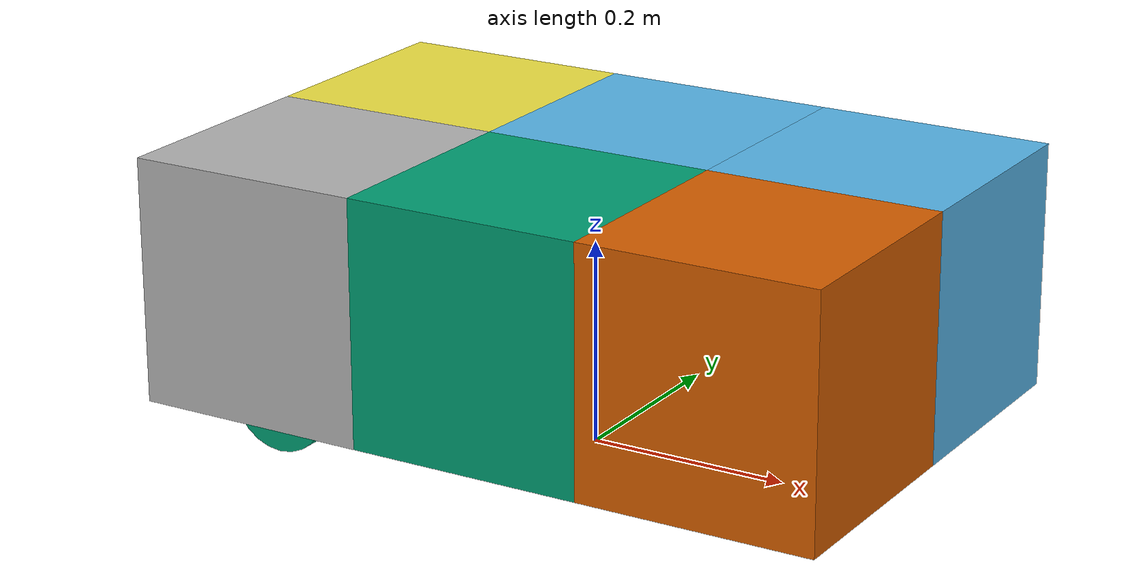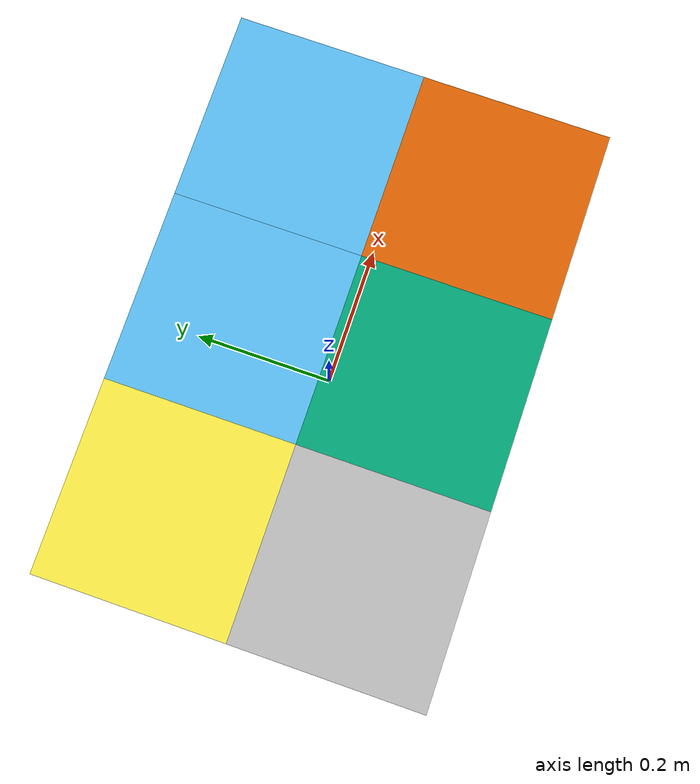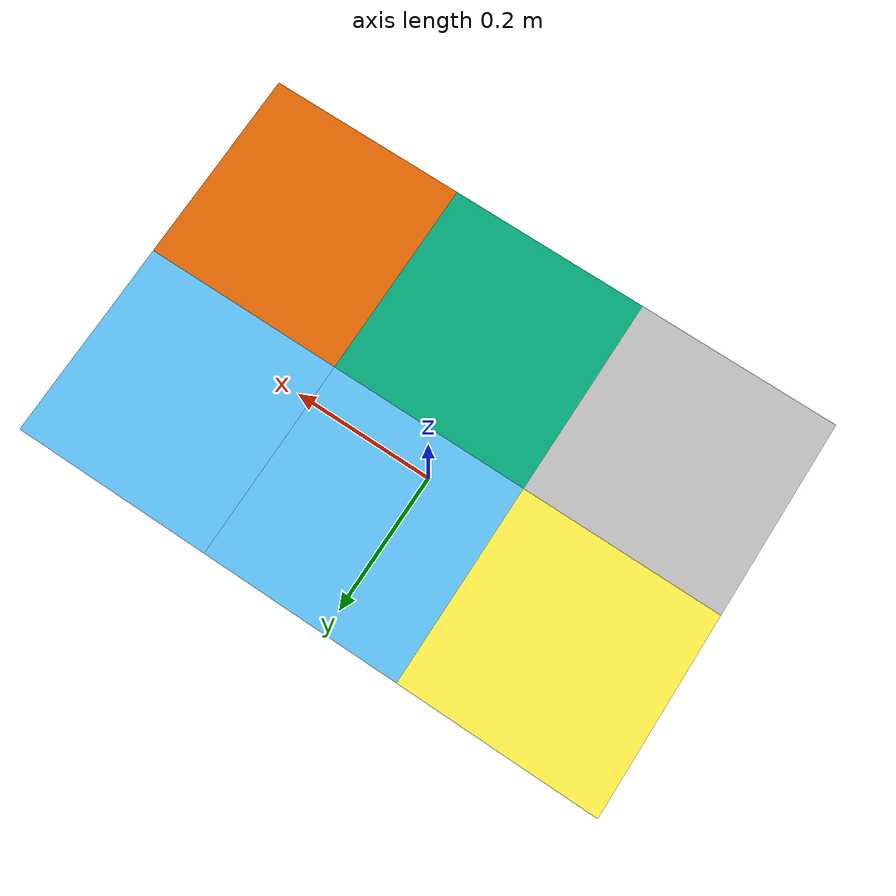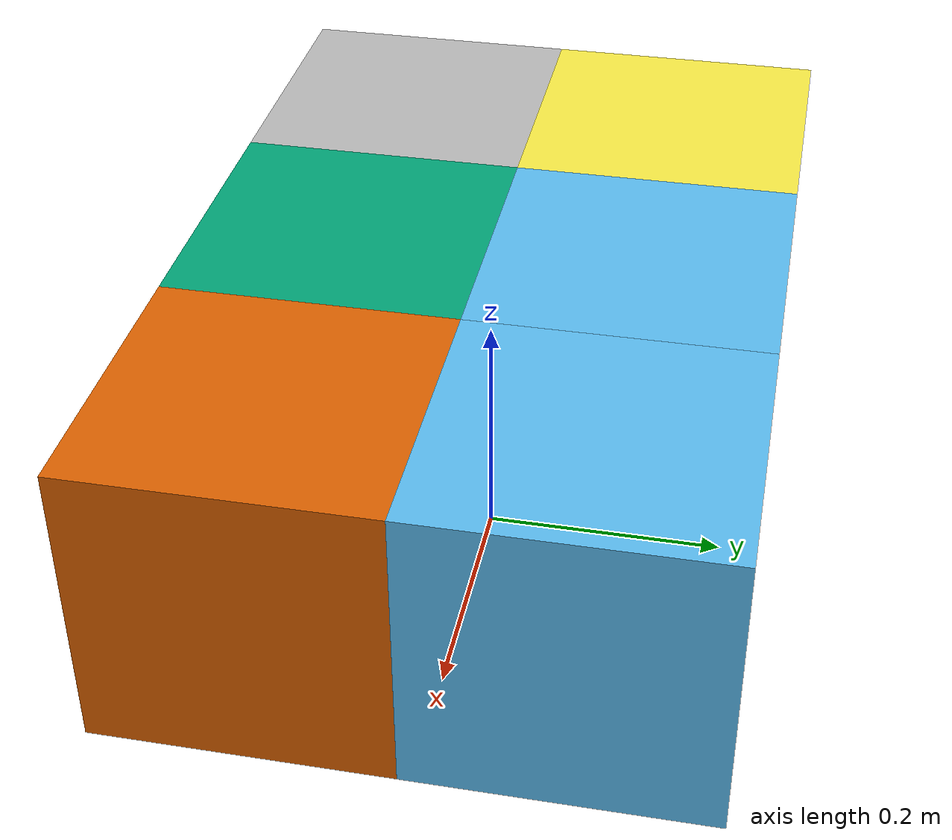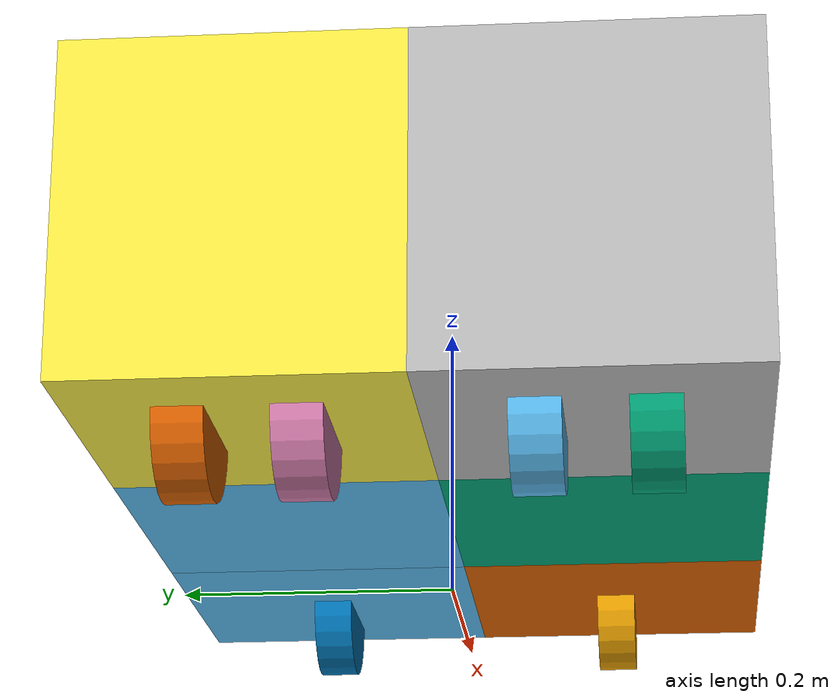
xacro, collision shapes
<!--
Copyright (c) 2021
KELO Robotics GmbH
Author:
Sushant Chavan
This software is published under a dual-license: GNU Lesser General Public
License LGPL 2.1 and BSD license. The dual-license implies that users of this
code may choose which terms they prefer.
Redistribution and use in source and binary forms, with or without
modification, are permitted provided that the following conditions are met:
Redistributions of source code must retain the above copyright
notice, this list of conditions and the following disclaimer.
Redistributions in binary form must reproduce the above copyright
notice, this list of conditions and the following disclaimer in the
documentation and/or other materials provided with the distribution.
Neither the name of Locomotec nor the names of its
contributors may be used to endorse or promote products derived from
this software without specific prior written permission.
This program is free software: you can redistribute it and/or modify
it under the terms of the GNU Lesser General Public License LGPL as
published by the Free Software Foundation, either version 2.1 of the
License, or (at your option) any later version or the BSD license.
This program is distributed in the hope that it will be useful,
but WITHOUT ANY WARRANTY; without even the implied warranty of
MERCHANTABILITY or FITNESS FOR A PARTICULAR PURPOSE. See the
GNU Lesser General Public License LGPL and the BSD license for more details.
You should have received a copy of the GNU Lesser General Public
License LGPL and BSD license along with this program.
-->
<?xml version='1.0'?>

<robot xmlns:xacro="http://ros.org/wiki/xacro" name="2_wheel_config" >

    <xacro:arg name="movable_joints" default="true"/>

    <!-- Include desired robile bricks -->
    <xacro:include filename="$(find robile_description)/urdf/robile_bricks/robile_active_wheel_brick.urdf.xacro" />
    <xacro:include filename="$(find robile_description)/urdf/robile_bricks/robile_passive_wheel_brick.urdf.xacro" />
    <xacro:include filename="$(find robile_description)/urdf/robile_bricks/robile_cpu_brick.urdf.xacro" />
    <xacro:include filename="$(find robile_description)/urdf/robile_bricks/robile_master_battery_brick.urdf.xacro" />

    <link name="base_link"/>

    <!-- Build platform using robile bricks -->
    <xacro:robile_passive_wheel_brick name="robile_1" parent="base_link" movable_joints="$(arg movable_joints)">
        <origin xyz="0.233 0.1165 0.05" rpy="0.0 0.0 0.0"/>
    </xacro:robile_passive_wheel_brick>

    <xacro:robile_passive_wheel_brick name="robile_2" parent="base_link" movable_joints="$(arg movable_joints)">
        <origin xyz="0.233 -0.1165 0.05" rpy="0.0 0.0 0.0"/>
    </xacro:robile_passive_wheel_brick>

    <xacro:robile_cpu_brick name="robile_3" parent="base_link">
        <origin xyz="0.0 0.1165 0.05" rpy="0.0 0.0 0.0"/>
    </xacro:robile_cpu_brick>

    <xacro:robile_master_battery_brick name="robile_4" parent="base_link">
        <origin xyz="0.0 -0.1165 0.05" rpy="0.0 0.0 0.0"/>
    </xacro:robile_master_battery_brick>

    <xacro:robile_active_wheel_brick name="robile_5" parent="base_link" movable_joints="$(arg movable_joints)">
        <origin xyz="-0.233 0.1165 0.05" rpy="0.0 0.0 0.0"/>
    </xacro:robile_active_wheel_brick>

    <xacro:robile_active_wheel_brick name="robile_6" parent="base_link" movable_joints="$(arg movable_joints)">
        <origin xyz="-0.233 -0.1165 0.05" rpy="0.0 0.0 0.0"/>
    </xacro:robile_active_wheel_brick>
</robot>

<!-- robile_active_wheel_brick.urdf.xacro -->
<robot xmlns:xacro="http://www.ros.org/wiki/xacro">

    <xacro:macro name="robile_active_wheel_brick" params="name parent *origin movable_joints:=true">

        <!-- Include xacro files-->
        <xacro:include filename="$(find robile_description)/urdf/base_macros/brick_housing.urdf.xacro" />
        <xacro:include filename="$(find robile_description)/urdf/base_macros/kelo_drive.urdf.xacro" />

        <joint name="${name}_joint" type="fixed">
            <xacro:insert_block name="origin" />
            <parent link="${parent}"/>
            <child link="${name}_link" />
        </joint>

        <xacro:brick_housing name="${name}" with_wheel="true" color="red"/>

        <xacro:kelo_drive name="${name}_drive" parent="${name}_link" movable_joints="${movable_joints}">
            <origin xyz="0 0 0" rpy="0 0 0.0"/>
        </xacro:kelo_drive>

    </xacro:macro>

</robot>

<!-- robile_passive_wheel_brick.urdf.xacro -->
<robot xmlns:xacro="http://www.ros.org/wiki/xacro">

    <xacro:macro name="robile_passive_wheel_brick" params="name parent *origin movable_joints:=true">

        <!-- Include xacro files-->
        <xacro:include filename="$(find robile_description)/urdf/base_macros/brick_housing.urdf.xacro" />
        <xacro:include filename="$(find robile_description)/urdf/base_macros/passive_caster_wheel.urdf.xacro" />

        <joint name="${name}_joint" type="fixed">
            <xacro:insert_block name="origin" />
            <parent link="${parent}"/>
            <child link="${name}_link" />
        </joint>

        <xacro:brick_housing name="${name}" with_wheel="true" color="blue"/>

        <xacro:passive_caster_wheel name="${name}_caster_wheel" parent="${name}_link" movable_joints="${movable_joints}">
            <origin xyz="0 0 0" rpy="0 0 0.0"/>
        </xacro:passive_caster_wheel>

    </xacro:macro>

</robot>

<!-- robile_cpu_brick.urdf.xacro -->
<robot xmlns:xacro="http://www.ros.org/wiki/xacro">

    <xacro:macro name="robile_cpu_brick" params="name parent *origin">

        <xacro:include filename="$(find robile_description)/urdf/base_macros/brick_housing.urdf.xacro" />

        <joint name="${name}_joint" type="fixed">
            <xacro:insert_block name="origin" />
            <parent link="${parent}"/>
            <child link="${name}_link" />
        </joint>

        <xacro:brick_housing name="${name}"/>

    </xacro:macro>

</robot>

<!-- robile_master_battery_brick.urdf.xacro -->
<robot xmlns:xacro="http://www.ros.org/wiki/xacro">

    <xacro:macro name="robile_master_battery_brick" params="name parent *origin">

        <xacro:include filename="$(find robile_description)/urdf/base_macros/brick_housing.urdf.xacro" />

        <joint name="${name}_joint" type="fixed">
            <xacro:insert_block name="origin" />
            <parent link="${parent}"/>
            <child link="${name}_link" />
        </joint>

        <xacro:brick_housing name="${name}" color="green"/>

    </xacro:macro>

</robot>

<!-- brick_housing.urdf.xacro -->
<robot xmlns:xacro="http://www.ros.org/wiki/xacro">

    <xacro:macro name="brick_housing" params="name color:=yellow with_wheel:=false">

        <!-- Include required xacro files -->
        <xacro:include filename="$(find robile_description)/urdf/base_macros/common.xacro" />

        <!-- Properties for a robile brick -->
        <xacro:property name="robile_size_x" value="0.233"/>
        <xacro:property name="robile_size_y" value="0.233"/>
        <xacro:property name="robile_size_z" value="0.239"/>
        <xacro:property name="center_of_mass_x" value="0.0005"/>
        <xacro:property name="center_of_mass_y" value="0.0001"/>
        <xacro:property name="center_of_mass_z" value="0.119"/>

        <link name="${name}_link">

            <!-- Aluminium casing of the robile -->
            <visual>
                <origin xyz="0 0 0" rpy="0 0 0"/>
                <geometry>
                    <xacro:if value="${with_wheel}">
                        <mesh filename="file://$(find robile_description)/meshes/robile_brick_housing/wheeled_brick_housing.dae" scale="1 1 1"/>
                    </xacro:if>
                    <xacro:unless value="${with_wheel}">
                        <mesh filename="file://$(find robile_description)/meshes/robile_brick_housing/general_brick_housing.dae" scale="1 1 1"/>
                    </xacro:unless>
                </geometry>
            </visual>

            <!-- robile lid -->
            <visual>
                <origin xyz="0 0 0" rpy="0 0 0"/>
                <geometry>
                    <mesh filename="file://$(find robile_description)/meshes/robile_brick_housing/lid.dae" scale="1 1 1"/>
                </geometry>
            </visual>

            <!-- robile lid cover (color passed as a parameter) -->
            <visual>
                <origin xyz="0 0 0" rpy="0 0 0"/>
                <geometry>
                    <mesh filename="file://$(find robile_description)/meshes/robile_brick_housing/lid_cover_${color}.dae" scale="1 1 1"/>
                </geometry>
            </visual>

            <!-- Collision box for brick housing -->
            <collision>
                <origin xyz="${center_of_mass_x} ${center_of_mass_y} ${center_of_mass_z}" rpy="0 0 0"/>
                <geometry>
                    <box size="${robile_size_x} ${robile_size_y} ${robile_size_z}" />
                </geometry>
            </collision>

            <!-- Inertia for brick housing -->
            <xacro:cuboid_inertia mass="5.0"
                                length="${robile_size_x}"
                                breadth="${robile_size_y}"
                                height="${robile_size_z}"
                                center_of_mass_x="${center_of_mass_x}"
                                center_of_mass_y="${center_of_mass_y}"
                                center_of_mass_z="${center_of_mass_z}"/>
        </link>

    </xacro:macro>

</robot>

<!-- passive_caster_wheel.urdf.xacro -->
<robot xmlns:xacro="http://www.ros.org/wiki/xacro">

    <xacro:macro name="passive_caster_wheel" params="name parent *origin movable_joints:=true">

        <xacro:include filename="$(find robile_description)/urdf/base_macros/common.xacro" />

        <!-- PIVOT -->
        <xacro:if value="${movable_joints}">
            <joint name="${name}_pivot_caster_joint" type="continuous">
                <xacro:insert_block name="origin" />
                <axis xyz="0 0 1"/>
                <parent link="${parent}"/>
                <child link="${name}_pivot_link" />
            </joint>

            <transmission name="${name}_pivot_transmission">
                <type>transmission_interface/SimpleTransmission</type>
                <joint name="${name}_pivot_caster_joint">
                    <hardwareInterface>hardware_interface/EffortJointInterface</hardwareInterface>
                </joint>
                <actuator name="${name}_pivot_motor">
                    <hardwareInterface>hardware_interface/EffortJointInterface</hardwareInterface>
                    <mechanicalReduction>1</mechanicalReduction>
                </actuator>
            </transmission>
        </xacro:if>
        <xacro:unless value="${movable_joints}">
            <joint name="${name}_pivot_caster_joint" type="fixed">
                <xacro:insert_block name="origin" />
                <axis xyz="0 0 1"/>
                <parent link="${parent}"/>
                <child link="${name}_pivot_link" />
            </joint>
        </xacro:unless>

        <link name="${name}_pivot_link">
            <visual>
                <origin xyz="0 0 0" rpy="0 0 0"/>
                <geometry>
                    <mesh filename="file://$(find robile_description)/meshes/passive_caster_wheel/pivot.dae" scale="1 1 1"/>
                </geometry>
            </visual>

            <xacro:cuboid_inertia mass="0.5" length="0.078" breadth="0.0936" height="0.0895" center_of_mass_z="0.045"/>
        </link>

        <!-- CASTER OFFSET -->
        <joint name="${name}_caster_offset_joint" type="fixed">
            <origin xyz="0.031557 -0.00007 0.0" rpy="0 0 0"/>
            <parent link="${name}_pivot_link"/>
            <child link="${name}_caster_offset_link" />
        </joint>

        <link name="${name}_caster_offset_link">
            <xacro:cuboid_inertia mass="0.1" length="0.01" breadth="0.01" height="0.01"/>
        </link>

        <!-- CASTER WHEEL -->
        <xacro:if value="${movable_joints}">
            <joint name="${name}_wheel_joint" type="continuous">
                <origin xyz="0 0 0" rpy="0 0 0"/>
                <axis xyz="0 1 0"/>
                <parent link="${name}_caster_offset_link"/>
                <child link="${name}_wheel_link" />
            </joint>

            <transmission name="${name}_wheel_transmission">
                <type>transmission_interface/SimpleTransmission</type>
                <joint name="${name}_wheel_joint">
                    <hardwareInterface>hardware_interface/EffortJointInterface</hardwareInterface>
                </joint>
                <actuator name="${name}_wheel_motor">
                    <hardwareInterface>hardware_interface/EffortJointInterface</hardwareInterface>
                    <mechanicalReduction>1</mechanicalReduction>
                </actuator>
            </transmission>
        </xacro:if>
        <xacro:unless value="${movable_joints}">
            <joint name="${name}_wheel_joint" type="fixed">
                <origin xyz="0 0 0" rpy="0 0 0"/>
                <axis xyz="0 1 0"/>
                <parent link="${name}_caster_offset_link"/>
                <child link="${name}_wheel_link" />
            </joint>
        </xacro:unless>

        <link name="${name}_wheel_link">
            <visual>
                <origin xyz="-0.031557 0.00007 0.0" rpy="0 0 0"/>
                <geometry>
                    <mesh filename="file://$(find robile_description)/meshes/passive_caster_wheel/wheel.dae" scale="1 1 1"/>
                </geometry>
            </visual>

            <collision>
                <origin xyz="0 0 0" rpy="1.570796327 0 0"/>
                <geometry>
                    <cylinder radius="0.05" length="0.03"/>
                </geometry>
            </collision>

            <xacro:cylinder_inertia mass="0.5" radius="0.05" length="0.03" center_of_mass_roll="1.570796327"/>
        </link>

    </xacro:macro>

</robot>

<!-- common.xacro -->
<robot xmlns:xacro="http://www.ros.org/wiki/xacro">

    <xacro:macro name="cylinder_inertia" params="mass length radius
        center_of_mass_x:=0 center_of_mass_y:=0 center_of_mass_z:=0
        center_of_mass_roll:=0 center_of_mass_pitch:=0 center_of_mass_yaw:=0">
        <inertial>
            <origin xyz="${center_of_mass_x} ${center_of_mass_y} ${center_of_mass_z}"
                    rpy="${center_of_mass_roll} ${center_of_mass_pitch} ${center_of_mass_yaw}"/>
            <mass value="${mass}" />
            <inertia ixx="${(mass/12)*(3*radius*radius + length*length)}"
                     iyy="${(mass/12)*(3*radius*radius + length*length)}"
                     iyz="0.0" ixy="0.0" ixz="0.0"
                     izz="${(mass/2)*(radius*radius)}" />
        </inertial>
    </xacro:macro>

    <xacro:macro name="cuboid_inertia" params="mass length breadth height
        center_of_mass_x:=0 center_of_mass_y:=0 center_of_mass_z:=0
        center_of_mass_roll:=0 center_of_mass_pitch:=0 center_of_mass_yaw:=0">
        <inertial>
            <origin xyz="${center_of_mass_x} ${center_of_mass_y} ${center_of_mass_z}"
                    rpy="${center_of_mass_roll} ${center_of_mass_pitch} ${center_of_mass_yaw}"/>
            <mass value="${mass}" />
            <inertia ixx="${(mass/12)*(breadth*breadth + height*height)}"
                     iyy="${(mass/12)*(height*height + length*length)}"
                     iyz="0.0" ixy="0.0" ixz="0.0"
                     izz="${(mass/12)*(breadth*breadth + length*length)}" />
        </inertial>
    </xacro:macro>

    <xacro:macro name="sphere_inertia" params="mass radius
        center_of_mass_x:=0 center_of_mass_y:=0 center_of_mass_z:=0
        center_of_mass_roll:=0 center_of_mass_pitch:=0 center_of_mass_yaw:=0">
        <inertial>
            <origin xyz="${center_of_mass_x} ${center_of_mass_y} ${center_of_mass_z}"
                    rpy="${center_of_mass_roll} ${center_of_mass_pitch} ${center_of_mass_yaw}"/>
            <mass value="${mass}" />
            <inertia ixx="${(mass*0.4)*(radius*radius)}"
                     iyy="${(mass*0.4)*(radius*radius)}"
                     iyz="0.0" ixy="0.0" ixz="0.0"
                     izz="${(mass*0.4)*(radius*radius)}" />
        </inertial>
    </xacro:macro>

</robot>

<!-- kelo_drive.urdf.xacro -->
<robot xmlns:xacro="http://www.ros.org/wiki/xacro">

    <xacro:macro name="kelo_drive" params="name parent *origin movable_joints:=true">

        <xacro:include filename="$(find robile_description)/urdf/base_macros/common.xacro" />
        <xacro:include filename="$(find robile_description)/urdf/base_macros/kelo_drive_wheel.urdf.xacro" />

        <!-- PIVOT -->
        <xacro:if value="${movable_joints}">
            <joint name="${name}_pivot_joint" type="continuous">
                <xacro:insert_block name="origin" />
                <axis xyz="0 0 1"/>
                <parent link="${parent}"/>
                <child link="${name}_pivot_link" />
            </joint>

            <transmission name="${name}_pivot_transmission">
                <type>transmission_interface/SimpleTransmission</type>
                <joint name="${name}_pivot_joint">
                    <hardwareInterface>hardware_interface/EffortJointInterface</hardwareInterface>
                </joint>
                <actuator name="${name}_pivot_motor">
                    <hardwareInterface>hardware_interface/EffortJointInterface</hardwareInterface>
                    <mechanicalReduction>1</mechanicalReduction>
                </actuator>
            </transmission>
        </xacro:if>
        <xacro:unless value="${movable_joints}">
            <joint name="${name}_pivot_joint" type="fixed">
                <xacro:insert_block name="origin" />
                <axis xyz="0 0 1"/>
                <parent link="${parent}"/>
                <child link="${name}_pivot_link" />
            </joint>
        </xacro:unless>

        <link name="${name}_pivot_link">
            <visual>
                <origin xyz="0 0 0" rpy="0 0 0"/>
                <geometry>
                    <mesh filename="file://$(find robile_description)/meshes/kelo_drive/kelo_drive_base.dae" scale="1 1 1"/>
                </geometry>
            </visual>

            <!--TODO: Set the correct collisions -->
            <collision>
                <origin xyz="0 0 0.07" rpy="0 0 0"/>
                <geometry>
                    <box size="0.105 0.154 0.025" />
                </geometry>
            </collision>

            <!--TODO: Set the correct inertia-->
            <xacro:cuboid_inertia mass="10.0" length="0.233" breadth="0.233" height="0.233"/>
        </link>

        <!-- LEFT HUB WHEEL -->
        <xacro:kelo_drive_wheel name="${name}_left_hub_wheel" parent="${name}_pivot_link" movable_joints="${movable_joints}">
            <origin xyz="-0.01 0.039326 0.001514" rpy="0 0 0.0"/>
        </xacro:kelo_drive_wheel>

        <!-- RIGHT HUB WHEEL -->
        <xacro:kelo_drive_wheel name="${name}_right_hub_wheel" parent="${name}_pivot_link" movable_joints="${movable_joints}">
            <origin xyz="-0.01 -0.039326 0.001514" rpy="0 0 0.0"/>
        </xacro:kelo_drive_wheel>

    </xacro:macro>

</robot>

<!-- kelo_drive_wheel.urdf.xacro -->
<robot xmlns:xacro="http://www.ros.org/wiki/xacro">

    <xacro:macro name="kelo_drive_wheel" params="name parent *origin movable_joints:=true">

        <xacro:include filename="$(find robile_description)/urdf/base_macros/common.xacro" />

        <xacro:if value="${movable_joints}">
            <joint name="${name}_joint" type="continuous">
                <xacro:insert_block name="origin" />
                <axis xyz="0 1 0"/>
                <parent link="${parent}"/>
                <child link="${name}_link" />
            </joint>

            <transmission name="${name}_transmission">
                <type>transmission_interface/SimpleTransmission</type>
                <joint name="${name}_joint">
                    <hardwareInterface>hardware_interface/EffortJointInterface</hardwareInterface>
                </joint>
                <actuator name="${name}_motor">
                    <hardwareInterface>hardware_interface/EffortJointInterface</hardwareInterface>
                    <mechanicalReduction>1</mechanicalReduction>
                </actuator>
            </transmission>
        </xacro:if>
        <xacro:unless value="${movable_joints}">
            <joint name="${name}_joint" type="fixed">
                <xacro:insert_block name="origin" />
                <axis xyz="0 1 0"/>
                <parent link="${parent}"/>
                <child link="${name}_link" />
            </joint>
        </xacro:unless>

        <link name="${name}_link">
            <visual>
                <origin xyz="0 0 0" rpy="0 0 0"/>
                <geometry>
                    <mesh filename="file://$(find robile_description)/meshes/kelo_drive/kelo_drive_wheel.dae" scale="1 1 1"/>
                </geometry>
            </visual>

            <collision>
                <origin xyz="0 0 0" rpy="1.570796327 0 0"/>
                <geometry>
                    <cylinder radius="0.0515" length="0.035"/>
                </geometry>
            </collision>

            <!--HACK: Use large cuboid inertias to fix the issue that the model breaks when JointVelocity controller is activated -->
            <xacro:cuboid_inertia mass="10.0" length="0.233" breadth="0.233" height="0.233"/>
        </link>

    </xacro:macro>

</robot>
